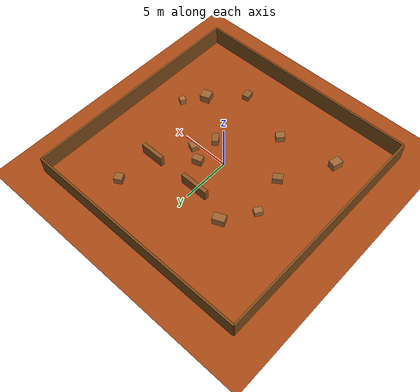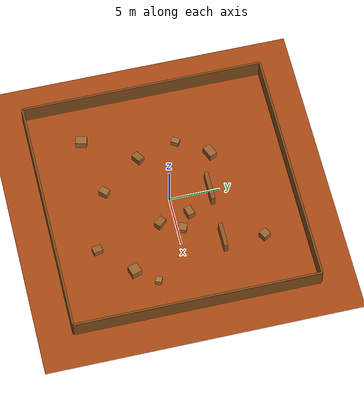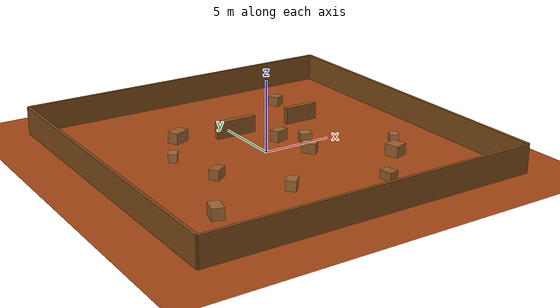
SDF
<?xml version="1.0"?>
<sdf version="1.6">
  <world name="level_2">

    <physics name="default_physics" type="ode">
      <max_step_size>0.001</max_step_size>
      <real_time_factor>1</real_time_factor>
      <real_time_update_rate>1000</real_time_update_rate>
    </physics>

    <light name="sun" type="directional">
      <cast_shadows>true</cast_shadows>
      <pose>0 0 100 0 -0 0</pose>
      <diffuse>0.8 0.6 0.4 1</diffuse>
      <specular>0.2 0.2 0.2 1</specular>
      <attenuation>
        <range>1000</range>
        <constant>0.9</constant>
        <linear>0.01</linear>
        <quadratic>0.001</quadratic>
      </attenuation>
      <direction>-0.5 0.5 -1</direction>
    </light>

    <!-- Mars-like ground -->
    <model name="ground_plane">
      <static>true</static>
      <link name="link">
        <collision name="collision">
          <geometry>
            <plane><normal>0 0 1</normal><size>50 50</size></plane>
          </geometry>
          <surface>
            <friction><ode><mu>0.8</mu><mu2>0.8</mu2></ode></friction>
          </surface>
        </collision>
        <visual name="visual">
          <geometry>
            <plane><normal>0 0 1</normal><size>50 50</size></plane>
          </geometry>
          <material>
            <ambient>0.65 0.28 0.08 1</ambient>
            <diffuse>0.65 0.28 0.08 1</diffuse>
          </material>
        </visual>
      </link>
    </model>

    <!-- Boundary walls -->
    <model name="wall_north">
      <static>true</static>
      <pose>0 12 1 0 0 0</pose>
      <link name="link">
        <collision name="collision"><geometry><box><size>24 0.2 2</size></box></geometry></collision>
        <visual name="visual"><geometry><box><size>24 0.2 2</size></box></geometry><material><ambient>0.5 0.3 0.1 1</ambient></material></visual>
      </link>
    </model>
    <model name="wall_south">
      <static>true</static>
      <pose>0 -12 1 0 0 0</pose>
      <link name="link">
        <collision name="collision"><geometry><box><size>24 0.2 2</size></box></geometry></collision>
        <visual name="visual"><geometry><box><size>24 0.2 2</size></box></geometry><material><ambient>0.5 0.3 0.1 1</ambient></material></visual>
      </link>
    </model>
    <model name="wall_east">
      <static>true</static>
      <pose>12 0 1 0 0 0</pose>
      <link name="link">
        <collision name="collision"><geometry><box><size>0.2 24 2</size></box></geometry></collision>
        <visual name="visual"><geometry><box><size>0.2 24 2</size></box></geometry><material><ambient>0.5 0.3 0.1 1</ambient></material></visual>
      </link>
    </model>
    <model name="wall_west">
      <static>true</static>
      <pose>-12 0 1 0 0 0</pose>
      <link name="link">
        <collision name="collision"><geometry><box><size>0.2 24 2</size></box></geometry></collision>
        <visual name="visual"><geometry><box><size>0.2 24 2</size></box></geometry><material><ambient>0.5 0.3 0.1 1</ambient></material></visual>
      </link>
    </model>

    <!-- LEVEL 2 OBSTACLES: 14 obstacles, some clustered to force routing -->

    <!-- Cluster A: near start, forces initial maneuver -->
    <model name="rock_a1"><static>true</static><pose>2.0 1.5 0.4 0 0 0.3</pose>
      <link name="link">
        <collision name="collision"><geometry><box><size>1.0 0.7 0.8</size></box></geometry></collision>
        <visual name="visual"><geometry><box><size>1.0 0.7 0.8</size></box></geometry><material><ambient>0.6 0.38 0.18 1</ambient></material></visual>
      </link>
    </model>
    <model name="rock_a2"><static>true</static><pose>3.5 0.5 0.3 0 0 1.2</pose>
      <link name="link">
        <collision name="collision"><geometry><box><size>0.8 0.8 0.6</size></box></geometry></collision>
        <visual name="visual"><geometry><box><size>0.8 0.8 0.6</size></box></geometry><material><ambient>0.62 0.40 0.20 1</ambient></material></visual>
      </link>
    </model>
    <model name="rock_a3"><static>true</static><pose>2.5 -1.5 0.35 0 0 0.7</pose>
      <link name="link">
        <collision name="collision"><geometry><box><size>0.7 1.0 0.7</size></box></geometry></collision>
        <visual name="visual"><geometry><box><size>0.7 1.0 0.7</size></box></geometry><material><ambient>0.58 0.36 0.16 1</ambient></material></visual>
      </link>
    </model>

    <!-- Cluster B: mid-field barrier with gap -->
    <model name="barrier_b1"><static>true</static><pose>0.0 4.0 0.6 0 0 0</pose>
      <link name="link">
        <collision name="collision"><geometry><box><size>3.0 0.4 1.2</size></box></geometry></collision>
        <visual name="visual"><geometry><box><size>3.0 0.4 1.2</size></box></geometry><material><ambient>0.55 0.33 0.13 1</ambient></material></visual>
      </link>
    </model>
    <model name="barrier_b2"><static>true</static><pose>5.5 4.0 0.6 0 0 0</pose>
      <link name="link">
        <collision name="collision"><geometry><box><size>2.5 0.4 1.2</size></box></geometry></collision>
        <visual name="visual"><geometry><box><size>2.5 0.4 1.2</size></box></geometry><material><ambient>0.55 0.33 0.13 1</ambient></material></visual>
      </link>
    </model>

    <!-- Cluster C: far field rocks -->
    <model name="rock_c1"><static>true</static><pose>-4.0 5.0 0.4 0 0 0.4</pose>
      <link name="link">
        <collision name="collision"><geometry><box><size>1.2 0.8 0.8</size></box></geometry></collision>
        <visual name="visual"><geometry><box><size>1.2 0.8 0.8</size></box></geometry><material><ambient>0.60 0.38 0.18 1</ambient></material></visual>
      </link>
    </model>
    <model name="rock_c2"><static>true</static><pose>-6.0 2.0 0.3 0 0 1.0</pose>
      <link name="link">
        <collision name="collision"><geometry><box><size>0.8 0.6 0.6</size></box></geometry></collision>
        <visual name="visual"><geometry><box><size>0.8 0.6 0.6</size></box></geometry><material><ambient>0.62 0.42 0.22 1</ambient></material></visual>
      </link>
    </model>
    <model name="rock_c3"><static>true</static><pose>-5.0 -2.0 0.35 0 0 0.6</pose>
      <link name="link">
        <collision name="collision"><geometry><box><size>1.0 0.7 0.7</size></box></geometry></collision>
        <visual name="visual"><geometry><box><size>1.0 0.7 0.7</size></box></geometry><material><ambient>0.58 0.36 0.16 1</ambient></material></visual>
      </link>
    </model>

    <!-- Cluster D: tricky corner obstacles -->
    <model name="rock_d1"><static>true</static><pose>7.0 -5.0 0.4 0 0 0.3</pose>
      <link name="link">
        <collision name="collision"><geometry><box><size>1.0 1.0 0.8</size></box></geometry></collision>
        <visual name="visual"><geometry><box><size>1.0 1.0 0.8</size></box></geometry><material><ambient>0.60 0.38 0.18 1</ambient></material></visual>
      </link>
    </model>
    <model name="rock_d2"><static>true</static><pose>8.5 -3.0 0.3 0 0 1.1</pose>
      <link name="link">
        <collision name="collision"><geometry><box><size>0.6 0.6 0.6</size></box></geometry></collision>
        <visual name="visual"><geometry><box><size>0.6 0.6 0.6</size></box></geometry><material><ambient>0.65 0.43 0.23 1</ambient></material></visual>
      </link>
    </model>

    <!-- Scattered singles -->
    <model name="rock_e1"><static>true</static><pose>-2.0 -6.0 0.35 0 0 0.8</pose>
      <link name="link">
        <collision name="collision"><geometry><box><size>0.9 0.7 0.7</size></box></geometry></collision>
        <visual name="visual"><geometry><box><size>0.9 0.7 0.7</size></box></geometry><material><ambient>0.60 0.40 0.20 1</ambient></material></visual>
      </link>
    </model>
    <model name="rock_e2"><static>true</static><pose>4.0 -8.0 0.3 0 0 0.2</pose>
      <link name="link">
        <collision name="collision"><geometry><box><size>0.7 0.9 0.6</size></box></geometry></collision>
        <visual name="visual"><geometry><box><size>0.7 0.9 0.6</size></box></geometry><material><ambient>0.58 0.36 0.16 1</ambient></material></visual>
      </link>
    </model>
    <model name="rock_e3"><static>true</static><pose>-8.0 -7.0 0.4 0 0 1.3</pose>
      <link name="link">
        <collision name="collision"><geometry><box><size>1.1 0.8 0.8</size></box></geometry></collision>
        <visual name="visual"><geometry><box><size>1.1 0.8 0.8</size></box></geometry><material><ambient>0.62 0.40 0.20 1</ambient></material></visual>
      </link>
    </model>
    <model name="rock_e4"><static>true</static><pose>6.0 8.0 0.35 0 0 0.5</pose>
      <link name="link">
        <collision name="collision"><geometry><box><size>0.8 0.8 0.7</size></box></geometry></collision>
        <visual name="visual"><geometry><box><size>0.8 0.8 0.7</size></box></geometry><material><ambient>0.60 0.38 0.18 1</ambient></material></visual>
      </link>
    </model>

    <plugin name="gazebo_ros_state" filename="libgazebo_ros_state.so">
      <ros><namespace>/</namespace></ros>
      <update_rate>10.0</update_rate>
    </plugin>

  </world>
</sdf>
